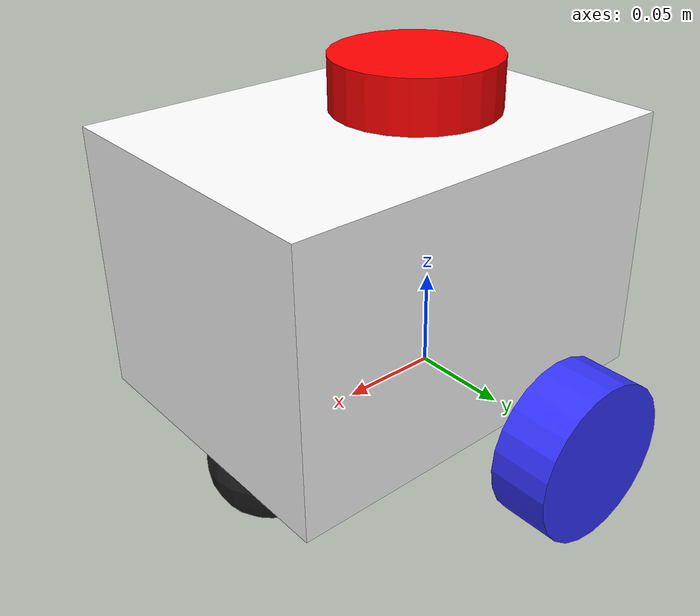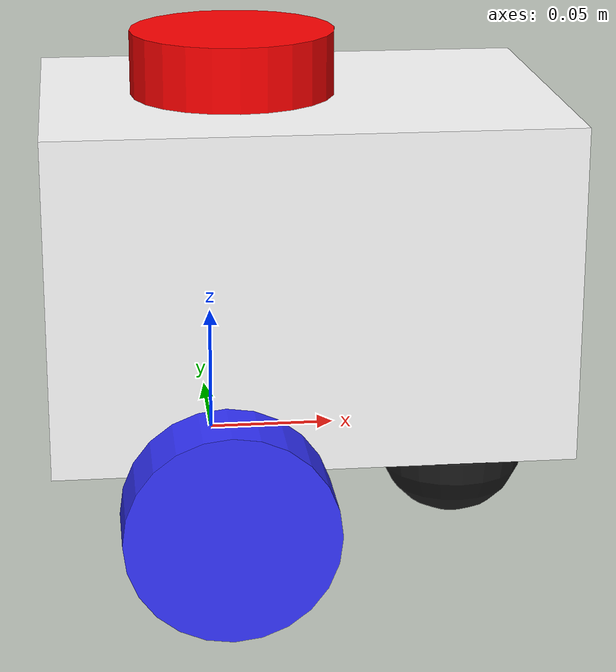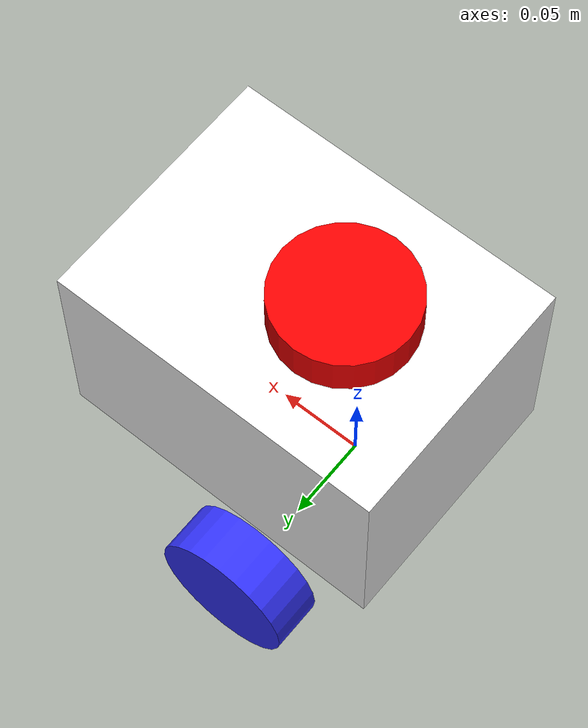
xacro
<?xml version="1.0"?>
<robot xmlns:xacro="http://www.ros.org/wiki/xacro"  name="robot">

    <xacro:include filename="robot_core.xacro" />

    <xacro:include filename="ros2_control.xacro" />

    <xacro:include filename="lidar.xacro" />

</robot>

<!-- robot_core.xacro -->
<robot xmlns:xacro="http://www.ros.org/wiki/xacro"  >

    <xacro:include filename="inertial_macros.xacro"/>

    <material name="white">
        <color rgba="1 1 1 1" />
    </material>

    <material name="orange">
        <color rgba="1 0.3 0.1 1" />
    </material>

    <material name="blue">
        <color rgba="0.2 0.2 1 1" />
    </material>

    <material name="black">
        <color rgba="0 0 0 1" />
    </material>

    <material name="red">
        <color rgba="1 0 0 1" />
    </material>

    <!-- BASE LINK -->

    <link name="base_link">

    </link>

    <joint name="chassis_joint" type="fixed">
        <parent link="base_link"/>
        <child link="chassis"/>
        <origin xyz="-0.04 0 0"/>
    </joint>

    <!-- CHASSIS LINK -->

    <link name="chassis">
        <visual>
            <origin xyz="0.075 0 0.075"/>
            <geometry>
                <box size="0.2 0.15 0.13"/>
            </geometry>
            <material name="white"/>
        </visual>
        <collision>
            <origin xyz="0.075 0 0.075"/>
            <geometry>
                <box size="0.2 0.15 0.13"/>
            </geometry>
        </collision>
        <xacro:inertial_box mass="0.5" x="0.2" y="0.15" z="0.13">
            <origin xyz="0.075 0 0.075" rpy="0 0 0"/>
        </xacro:inertial_box>
    </link>

    <gazebo reference="chassis">
        <material>Gazebo/White</material>
    </gazebo>

    <!-- LEFT WHEEL LINK-->

    <joint name="left_wheel_joint" type="continuous">
        <parent link="base_link"/>
        <child link="left_wheel"/>
        <origin xyz="0 0.100 0" rpy="-${pi/2} 0 0"/>
        <axis xyz="0 0 1"/>
    </joint>

    <link name="left_wheel">
        <visual>
            <geometry>
                <cylinder radius="0.04" length="0.03"/>
            </geometry>
            <material name="blue"/>
        </visual>
        <collision>
            <geometry>
                <cylinder radius="0.04" length="0.03"/>
            </geometry>
        </collision>
        <xacro:inertial_cylinder mass="0.1" length="0.03" radius="0.04">
            <origin xyz="0 0 0" rpy="0 0 0"/>
        </xacro:inertial_cylinder>
    </link>

    <gazebo reference="left_wheel">
        <material>Gazebo/Blue</material>
    </gazebo>

    <!-- RIGHT WHEEL LINK-->

    <joint name="right_wheel_joint" type="continuous">
        <parent link="base_link"/>
        <child link="right_wheel"/>
        <origin xyz="0 -0.100 0" rpy="${pi/2} 0 0"/>
        <axis xyz="0 0 -1"/>
    </joint>

    <link name="right_wheel">
        <visual>
            <geometry>
                <cylinder radius="0.04" length="0.03"/>
            </geometry>
            <material name="blue"/>
        </visual>
        <collision>
            <geometry>
                <cylinder radius="0.04" length="0.03"/>
            </geometry>
        </collision>
        <xacro:inertial_cylinder mass="0.1" length="0.03" radius="0.04">
            <origin xyz="0 0 0" rpy="0 0 0"/>
        </xacro:inertial_cylinder>
    </link>

    <gazebo reference="right_wheel">
        <material>Gazebo/Blue</material>
    </gazebo>

    <!-- CASTER WHEEL LINK -->

    <joint name="caster_wheel_joint" type="fixed">
        <parent link="chassis"/>
        <child link="caster_wheel"/>
        <origin xyz="0.14 0 -0.01"/>
    </joint>

    <link name="caster_wheel">
        <visual>
            <geometry>
                <sphere radius="0.03"/>
                <material name="black"/>
            </geometry>
        </visual>
        <collision>
            <geometry>
                <sphere radius="0.03"/>
            </geometry>
        </collision>
        <xacro:inertial_sphere mass="0.1" radius="0.03">
            <origin xyz="0 0 0" rpy="0 0 0"/>
        </xacro:inertial_sphere>
    </link>

    <gazebo reference="caster_wheel">
        <material>Gazebo/Black</material>
        <mu1 value="0.001"/>
        <mu2 value="0.001"/>
    </gazebo>

</robot>

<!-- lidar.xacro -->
<robot xmlns:xacro="http://www.ros.org/wiki/xacro"  >

    <joint name="laser_joint" type="fixed">
        <parent link="chassis"/>
        <child link="laser_frame"/>
        <origin xyz="0.05 0 0.15" rpy="0 0 0"/>
    </joint>

    <link name="laser_frame">
        <visual>
            <geometry>
                <cylinder radius="0.04" length="0.03"/>
            </geometry>
            <material name="red"/>
        </visual>
        <collision>
            <geometry>
                <cylinder radius="0.04" length="0.03"/>
            </geometry>
        </collision>
        <xacro:inertial_cylinder mass="0.1" length="0.03" radius="0.04">
            <origin xyz="0 0 0" rpy="0 0 0"/>
        </xacro:inertial_cylinder>
    </link>

    <gazebo reference="laser_frame">
        <material>Gazebo/Black</material>

        <sensor name="laser" type="ray">
            <pose> 0 0 0 0 0 0 </pose>
            <visualize>true</visualize>
            <update_rate>10</update_rate>
            <ray>
                <scan>
                    <horizontal>
                        <samples>360</samples>
                        <min_angle>-3.14</min_angle>
                        <max_angle>3.14</max_angle>
                    </horizontal>
                </scan>
                <range>
                    <min>0.3</min>
                    <max>12</max>
                </range>
            </ray>
            <plugin name="laser_controller" filename="libgazebo_ros_ray_sensor.so">
                <ros>
                    <argument>~/out:=scan</argument>
                </ros>
                <output_type>sensor_msgs/LaserScan</output_type>
                <frame_name>laser_frame</frame_name>
            </plugin>
        </sensor>
    </gazebo>

</robot>
